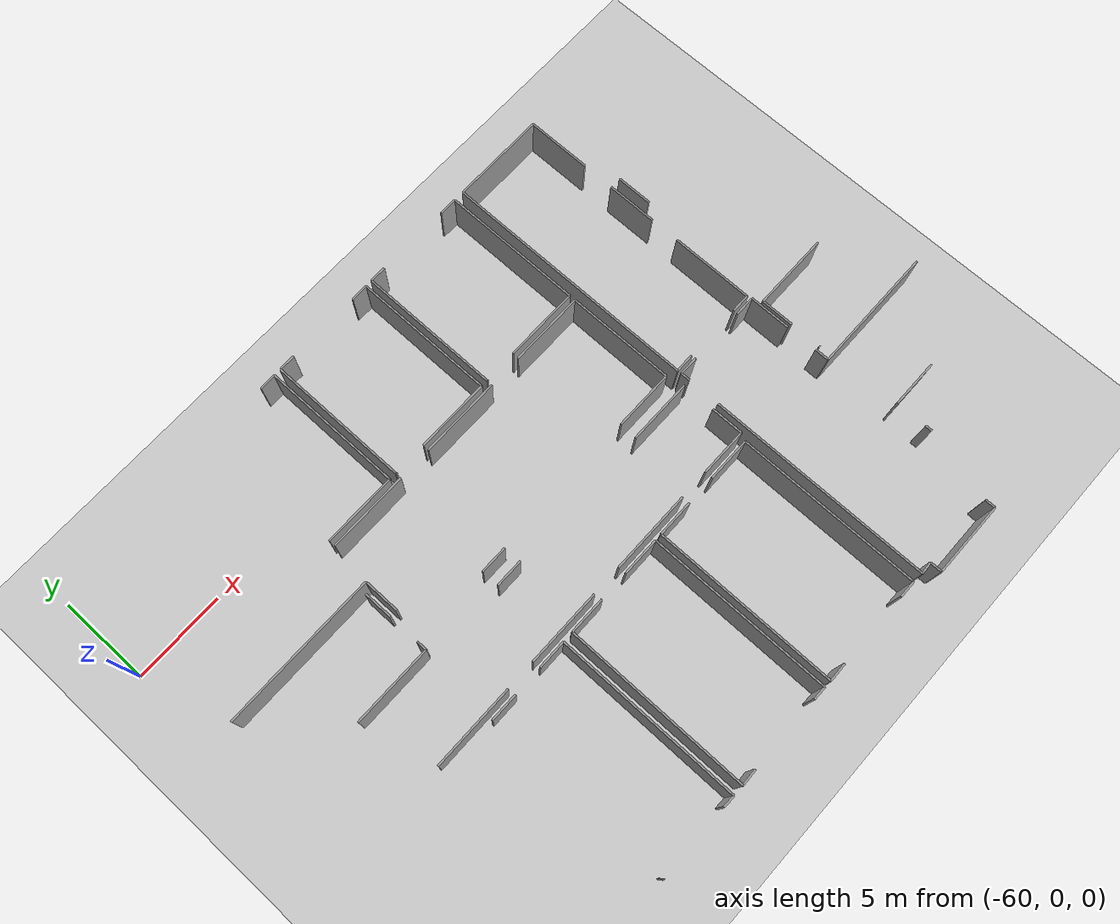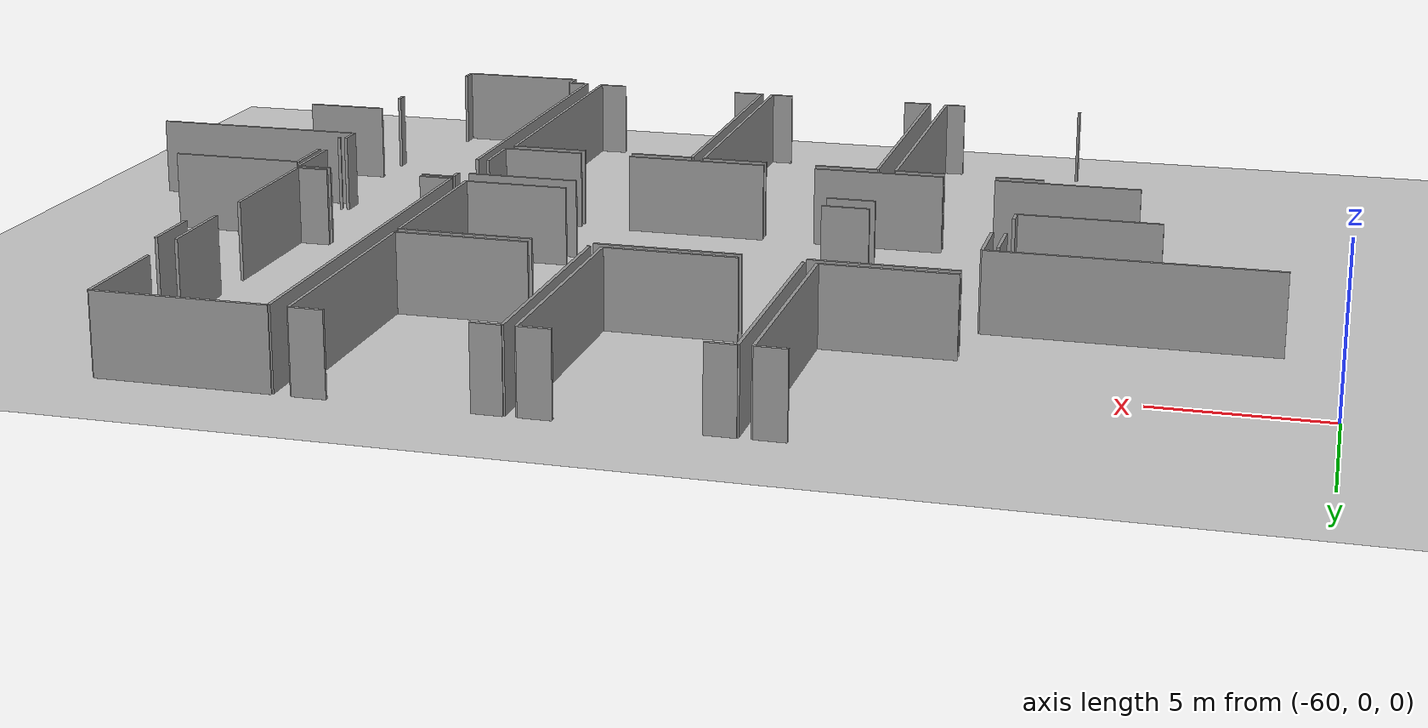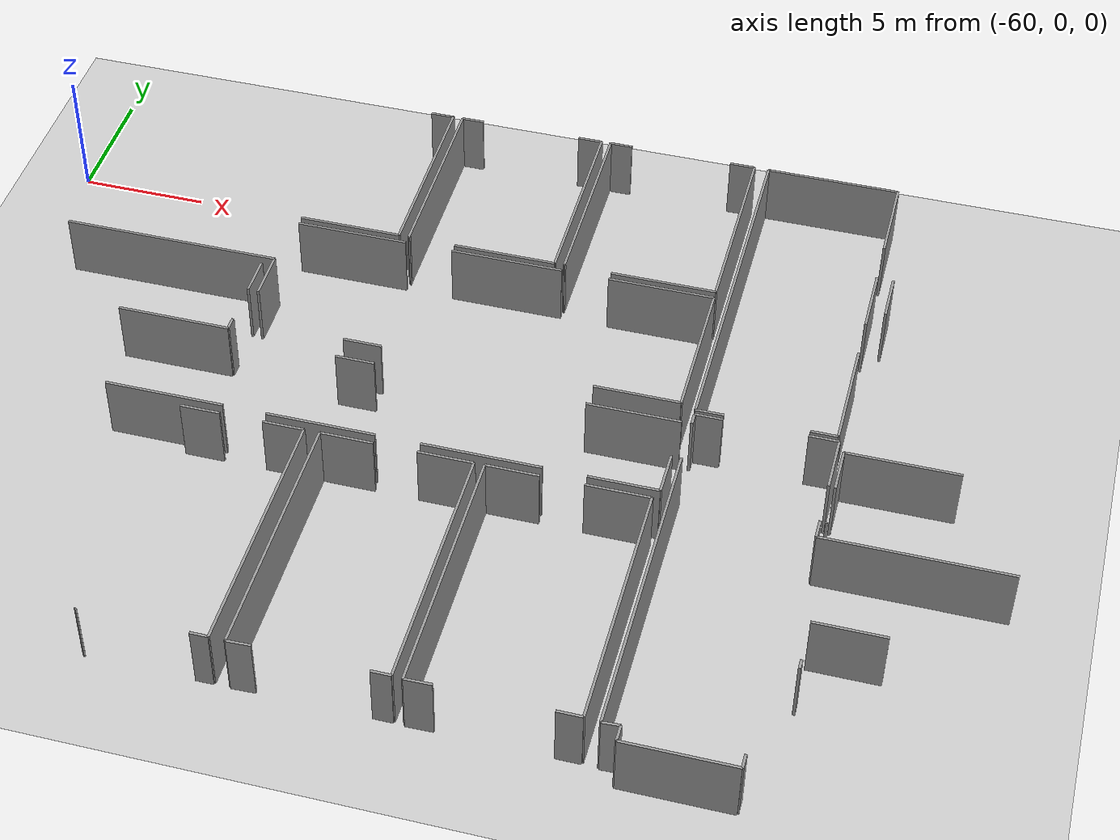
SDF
<sdf version="1.6">
 <world name="default">
  <model name="ground_plane">
   <static>1</static>
   <link name="link">
    <collision name="collision">
     <geometry><plane><normal>0 0 1</normal><size>100 100</size></plane></geometry>
     <surface><friction><ode><mu>100</mu><mu2>50</mu2></ode></friction></surface>
    </collision>
    <visual name="visual">
     <cast_shadows>0</cast_shadows>
     <geometry><plane><normal>0 0 1</normal><size>100 100</size></plane></geometry>
     <material>
      <script><uri>file://media/materials/scripts/gazebo.material</uri><name>Gazebo/Grey</name></script>
     </material>
    </visual>
   </link>
  </model>
  <model name="0510035343_A_40_1_102">
   <static>1</static>
   <link name="Wall_28">
    <collision name="Wall_28_Collision">
     <geometry><box><size>1.5147418198 0.1 2.5</size></box></geometry>
     <pose>0.757370909899 0 1.25 0 0 0</pose>
    </collision>
    <visual name="Wall_28_Visual">
     <pose>0.757370909899 0 1.25 0 0 0</pose>
     <geometry><box><size>1.5147418198 0.1 2.5</size></box></geometry>
     <material>
      <script><uri>file://media/materials/scripts/gazebo.material</uri><name>Gazebo/Grey</name></script>
      <ambient>1 1 1 1</ambient>
     </material>
    </visual>
    <pose>70.9034244184 -34.066203307 0 0 0 0.0</pose>
   </link>
   <link name="Wall_29">
    <collision name="Wall_29_Collision">
     <geometry><box><size>3.57256656828 0.1 2.5</size></box></geometry>
     <pose>1.78628328414 0 1.25 0 0 0</pose>
    </collision>
    <visual name="Wall_29_Visual">
     <pose>1.78628328414 0 1.25 0 0 0</pose>
     <geometry><box><size>3.57256656828 0.1 2.5</size></box></geometry>
     <material>
      <script><uri>file://media/materials/scripts/gazebo.material</uri><name>Gazebo/Grey</name></script>
      <ambient>1 1 1 1</ambient>
     </material>
    </visual>
    <pose>80.4839252277 -34.066203307 0 0 0 0.0</pose>
   </link>
   <link name="Wall_30">
    <collision name="Wall_30_Collision">
     <geometry><box><size>1.75467326796 0.1 2.5</size></box></geometry>
     <pose>0.877336633978 0 1.25 0 0 0</pose>
    </collision>
    <visual name="Wall_30_Visual">
     <pose>0.877336633978 0 1.25 0 0 0</pose>
     <geometry><box><size>1.75467326796 0.1 2.5</size></box></geometry>
     <material>
      <script><uri>file://media/materials/scripts/gazebo.material</uri><name>Gazebo/Grey</name></script>
      <ambient>1 1 1 1</ambient>
     </material>
    </visual>
    <pose>84.056491796 -35.8391570662 0 0 0 -1.57079632679</pose>
   </link>
   <link name="Wall_31">
    <collision name="Wall_31_Collision">
     <geometry><box><size>2.65016344536 0.1 2.5</size></box></geometry>
     <pose>1.32508172268 0 1.25 0 0 0</pose>
    </collision>
    <visual name="Wall_31_Visual">
     <pose>1.32508172268 0 1.25 0 0 0</pose>
     <geometry><box><size>2.65016344536 0.1 2.5</size></box></geometry>
     <material>
      <script><uri>file://media/materials/scripts/gazebo.material</uri><name>Gazebo/Grey</name></script>
      <ambient>1 1 1 1</ambient>
     </material>
    </visual>
    <pose>84.056491796 -37.5938303342 0 0 0 3.14159265359</pose>
   </link>
   <link name="Wall_32">
    <collision name="Wall_32_Collision">
     <geometry><box><size>4.52416769812 0.1 2.5</size></box></geometry>
     <pose>2.26208384906 0 1.25 0 0 0</pose>
    </collision>
    <visual name="Wall_32_Visual">
     <pose>2.26208384906 0 1.25 0 0 0</pose>
     <geometry><box><size>4.52416769812 0.1 2.5</size></box></geometry>
     <material>
      <script><uri>file://media/materials/scripts/gazebo.material</uri><name>Gazebo/Grey</name></script>
      <ambient>1 1 1 1</ambient>
     </material>
    </visual>
    <pose>79.7661620489 -37.5938303342 0 0 0 3.14159265359</pose>
   </link>
   <link name="Wall_33">
    <collision name="Wall_33_Collision">
     <geometry><box><size>4.1636357866 0.1 2.5</size></box></geometry>
     <pose>2.0818178933 0 1.25 0 0 0</pose>
    </collision>
    <visual name="Wall_33_Visual">
     <pose>2.0818178933 0 1.25 0 0 0</pose>
     <geometry><box><size>4.1636357866 0.1 2.5</size></box></geometry>
     <material>
      <script><uri>file://media/materials/scripts/gazebo.material</uri><name>Gazebo/Grey</name></script>
      <ambient>1 1 1 1</ambient>
     </material>
    </visual>
    <pose>73.5530800724 -37.5938303342 0 0 0 3.14159265359</pose>
   </link>
   <link name="Wall_34">
    <collision name="Wall_34_Collision">
     <geometry><box><size>4.56656828208 0.1 2.5</size></box></geometry>
     <pose>2.28328414104 0 1.25 0 0 0</pose>
    </collision>
    <visual name="Wall_34_Visual">
     <pose>2.28328414104 0 1.25 0 0 0</pose>
     <geometry><box><size>4.56656828208 0.1 2.5</size></box></geometry>
     <material>
      <script><uri>file://media/materials/scripts/gazebo.material</uri><name>Gazebo/Grey</name></script>
      <ambient>1 1 1 1</ambient>
     </material>
    </visual>
    <pose>67.7439461741 -37.5938303342 0 0 0 3.14159265359</pose>
   </link>
   <link name="Wall_131">
    <collision name="Wall_131_Collision">
     <geometry><box><size>1.52895997969 0.1 2.5</size></box></geometry>
     <pose>0.764479989844 0 1.25 0 0 0</pose>
    </collision>
    <visual name="Wall_131_Visual">
     <pose>0.764479989844 0 1.25 0 0 0</pose>
     <geometry><box><size>1.52895997969 0.1 2.5</size></box></geometry>
     <material>
      <script><uri>file://media/materials/scripts/gazebo.material</uri><name>Gazebo/Grey</name></script>
      <ambient>1 1 1 1</ambient>
     </material>
    </visual>
    <pose>66.246215367 -38.0102193024 0 0 0 0.0</pose>
   </link>
   <link name="Wall_132">
    <collision name="Wall_132_Collision">
     <geometry><box><size>1.58050080929 0.1 2.5</size></box></geometry>
     <pose>0.790250404646 0 1.25 0 0 0</pose>
    </collision>
    <visual name="Wall_132_Visual">
     <pose>0.790250404646 0 1.25 0 0 0</pose>
     <geometry><box><size>1.58050080929 0.1 2.5</size></box></geometry>
     <material>
      <script><uri>file://media/materials/scripts/gazebo.material</uri><name>Gazebo/Grey</name></script>
      <ambient>1 1 1 1</ambient>
     </material>
    </visual>
    <pose>69.4107715256 -38.0102193024 0 0 0 0.0</pose>
   </link>
   <link name="Wall_133">
    <collision name="Wall_133_Collision">
     <geometry><box><size>9.99155796756 0.1 2.5</size></box></geometry>
     <pose>4.99577898378 0 1.25 0 0 0</pose>
    </collision>
    <visual name="Wall_133_Visual">
     <pose>4.99577898378 0 1.25 0 0 0</pose>
     <geometry><box><size>9.99155796756 0.1 2.5</size></box></geometry>
     <material>
      <script><uri>file://media/materials/scripts/gazebo.material</uri><name>Gazebo/Grey</name></script>
      <ambient>1 1 1 1</ambient>
     </material>
    </visual>
    <pose>70.9912723349 -38.0102193024 0 0 0 -1.57079632679</pose>
   </link>
   <link name="Wall_134">
    <collision name="Wall_134_Collision">
     <geometry><box><size>0.66952299343 0.1 2.5</size></box></geometry>
     <pose>0.334761496715 0 1.25 0 0 0</pose>
    </collision>
    <visual name="Wall_134_Visual">
     <pose>0.334761496715 0 1.25 0 0 0</pose>
     <geometry><box><size>0.66952299343 0.1 2.5</size></box></geometry>
     <material>
      <script><uri>file://media/materials/scripts/gazebo.material</uri><name>Gazebo/Grey</name></script>
      <ambient>1 1 1 1</ambient>
     </material>
    </visual>
    <pose>70.9912723349 -48.00177727 0 0 0 3.14159265359</pose>
   </link>
   <link name="Wall_135">
    <collision name="Wall_135_Collision">
     <geometry><box><size>0.05682558138 0.1 2.5</size></box></geometry>
     <pose>0.02841279069 0 1.25 0 0 0</pose>
    </collision>
    <visual name="Wall_135_Visual">
     <pose>0.02841279069 0 1.25 0 0 0</pose>
     <geometry><box><size>0.05682558138 0.1 2.5</size></box></geometry>
     <material>
      <script><uri>file://media/materials/scripts/gazebo.material</uri><name>Gazebo/Grey</name></script>
      <ambient>1 1 1 1</ambient>
     </material>
    </visual>
    <pose>66.2822685582 -48.00177727 0 0 0 -2.25809766916</pose>
   </link>
   <link name="Wall_136">
    <collision name="Wall_136_Collision">
     <geometry><box><size>10.008822876 0.1 2.5</size></box></geometry>
     <pose>5.004411438 0 1.25 0 0 0</pose>
    </collision>
    <visual name="Wall_136_Visual">
     <pose>5.004411438 0 1.25 0 0 0</pose>
     <geometry><box><size>10.008822876 0.1 2.5</size></box></geometry>
     <material>
      <script><uri>file://media/materials/scripts/gazebo.material</uri><name>Gazebo/Grey</name></script>
      <ambient>1 1 1 1</ambient>
     </material>
    </visual>
    <pose>71.5876733632 -48.016757117 0 0 0 1.57079632679</pose>
   </link>
   <link name="Wall_137">
    <collision name="Wall_137_Collision">
     <geometry><box><size>2.02329493161 0.1 2.5</size></box></geometry>
     <pose>1.0116474658 0 1.25 0 0 0</pose>
    </collision>
    <visual name="Wall_137_Visual">
     <pose>1.0116474658 0 1.25 0 0 0</pose>
     <geometry><box><size>2.02329493161 0.1 2.5</size></box></geometry>
     <material>
      <script><uri>file://media/materials/scripts/gazebo.material</uri><name>Gazebo/Grey</name></script>
      <ambient>1 1 1 1</ambient>
     </material>
    </visual>
    <pose>71.5876733632 -38.007934241 0 0 0 0.0</pose>
   </link>
   <link name="Wall_138">
    <collision name="Wall_138_Collision">
     <geometry><box><size>2.10504935098 0.1 2.5</size></box></geometry>
     <pose>1.05252467549 0 1.25 0 0 0</pose>
    </collision>
    <visual name="Wall_138_Visual">
     <pose>1.05252467549 0 1.25 0 0 0</pose>
     <geometry><box><size>2.10504935098 0.1 2.5</size></box></geometry>
     <material>
      <script><uri>file://media/materials/scripts/gazebo.material</uri><name>Gazebo/Grey</name></script>
      <ambient>1 1 1 1</ambient>
     </material>
    </visual>
    <pose>75.2513884922 -38.007934241 0 0 0 0.0</pose>
   </link>
   <link name="Wall_139">
    <collision name="Wall_139_Collision">
     <geometry><box><size>9.97708591196 0.1 2.5</size></box></geometry>
     <pose>4.98854295598 0 1.25 0 0 0</pose>
    </collision>
    <visual name="Wall_139_Visual">
     <pose>4.98854295598 0 1.25 0 0 0</pose>
     <geometry><box><size>9.97708591196 0.1 2.5</size></box></geometry>
     <material>
      <script><uri>file://media/materials/scripts/gazebo.material</uri><name>Gazebo/Grey</name></script>
      <ambient>1 1 1 1</ambient>
     </material>
    </visual>
    <pose>77.3564378432 -38.007934241 0 0 0 -1.57079632679</pose>
   </link>
   <link name="Wall_140">
    <collision name="Wall_140_Collision">
     <geometry><box><size>0.741629375734 0.1 2.5</size></box></geometry>
     <pose>0.370814687867 0 1.25 0 0 0</pose>
    </collision>
    <visual name="Wall_140_Visual">
     <pose>0.370814687867 0 1.25 0 0 0</pose>
     <geometry><box><size>0.741629375734 0.1 2.5</size></box></geometry>
     <material>
      <script><uri>file://media/materials/scripts/gazebo.material</uri><name>Gazebo/Grey</name></script>
      <ambient>1 1 1 1</ambient>
     </material>
    </visual>
    <pose>77.3564378432 -47.985020153 0 0 0 3.14159265359</pose>
   </link>
   <link name="Wall_141">
    <collision name="Wall_141_Collision">
     <geometry><box><size>0.903157048505 0.1 2.5</size></box></geometry>
     <pose>0.451578524253 0 1.25 0 0 0</pose>
    </collision>
    <visual name="Wall_141_Visual">
     <pose>0.451578524253 0 1.25 0 0 0</pose>
     <geometry><box><size>0.903157048505 0.1 2.5</size></box></geometry>
     <material>
      <script><uri>file://media/materials/scripts/gazebo.material</uri><name>Gazebo/Grey</name></script>
      <ambient>1 1 1 1</ambient>
     </material>
    </visual>
    <pose>72.4902726205 -47.985020153 0 0 0 -3.10644538955</pose>
   </link>
   <link name="Wall_142">
    <collision name="Wall_142_Collision">
     <geometry><box><size>10.0126313117 0.1 2.5</size></box></geometry>
     <pose>5.00631565584 0 1.25 0 0 0</pose>
    </collision>
    <visual name="Wall_142_Visual">
     <pose>5.00631565584 0 1.25 0 0 0</pose>
     <geometry><box><size>10.0126313117 0.1 2.5</size></box></geometry>
     <material>
      <script><uri>file://media/materials/scripts/gazebo.material</uri><name>Gazebo/Grey</name></script>
      <ambient>1 1 1 1</ambient>
     </material>
    </visual>
    <pose>77.7494684059 -48.0180265956 0 0 0 1.57079632679</pose>
   </link>
   <link name="Wall_143">
    <collision name="Wall_143_Collision">
     <geometry><box><size>2.02354882732 0.1 2.5</size></box></geometry>
     <pose>1.01177441366 0 1.25 0 0 0</pose>
    </collision>
    <visual name="Wall_143_Visual">
     <pose>1.01177441366 0 1.25 0 0 0</pose>
     <geometry><box><size>2.02354882732 0.1 2.5</size></box></geometry>
     <material>
      <script><uri>file://media/materials/scripts/gazebo.material</uri><name>Gazebo/Grey</name></script>
      <ambient>1 1 1 1</ambient>
     </material>
    </visual>
    <pose>77.7494684059 -38.0053952839 0 0 0 0.0</pose>
   </link>
   <link name="Wall_144">
    <collision name="Wall_144_Collision">
     <geometry><box><size>2.4389222127 0.1 2.5</size></box></geometry>
     <pose>1.21946110635 0 1.25 0 0 0</pose>
    </collision>
    <visual name="Wall_144_Visual">
     <pose>1.21946110635 0 1.25 0 0 0</pose>
     <geometry><box><size>2.4389222127 0.1 2.5</size></box></geometry>
     <material>
      <script><uri>file://media/materials/scripts/gazebo.material</uri><name>Gazebo/Grey</name></script>
      <ambient>1 1 1 1</ambient>
     </material>
    </visual>
    <pose>81.4063283506 -38.0053952839 0 0 0 0.0</pose>
   </link>
   <link name="Wall_145">
    <collision name="Wall_145_Collision">
     <geometry><box><size>9.98978069758 0.1 2.5</size></box></geometry>
     <pose>4.99489034879 0 1.25 0 0 0</pose>
    </collision>
    <visual name="Wall_145_Visual">
     <pose>4.99489034879 0 1.25 0 0 0</pose>
     <geometry><box><size>9.98978069758 0.1 2.5</size></box></geometry>
     <material>
      <script><uri>file://media/materials/scripts/gazebo.material</uri><name>Gazebo/Grey</name></script>
      <ambient>1 1 1 1</ambient>
     </material>
    </visual>
    <pose>83.8452505633 -38.0053952839 0 0 0 -1.57079632679</pose>
   </link>
   <link name="Wall_146">
    <collision name="Wall_146_Collision">
     <geometry><box><size>0.936621282808 0.1 2.5</size></box></geometry>
     <pose>0.468310641404 0 1.25 0 0 0</pose>
    </collision>
    <visual name="Wall_146_Visual">
     <pose>0.468310641404 0 1.25 0 0 0</pose>
     <geometry><box><size>0.936621282808 0.1 2.5</size></box></geometry>
     <material>
      <script><uri>file://media/materials/scripts/gazebo.material</uri><name>Gazebo/Grey</name></script>
      <ambient>1 1 1 1</ambient>
     </material>
    </visual>
    <pose>83.8452505633 -47.9951759815 0 0 0 3.14159265359</pose>
   </link>
   <link name="Wall_147">
    <collision name="Wall_147_Collision">
     <geometry><box><size>1.01787053901 0.1 2.5</size></box></geometry>
     <pose>0.508935269503 0 1.25 0 0 0</pose>
    </collision>
    <visual name="Wall_147_Visual">
     <pose>0.508935269503 0 1.25 0 0 0</pose>
     <geometry><box><size>1.01787053901 0.1 2.5</size></box></geometry>
     <material>
      <script><uri>file://media/materials/scripts/gazebo.material</uri><name>Gazebo/Grey</name></script>
      <ambient>1 1 1 1</ambient>
     </material>
    </visual>
    <pose>78.7670824209 -47.9951759815 0 0 0 -3.11914133681</pose>
   </link>
   <link name="Wall_199">
    <collision name="Wall_199_Collision">
     <geometry><box><size>12.210098702 0.1 2.5</size></box></geometry>
     <pose>6.10504935098 0 1.25 0 0 0</pose>
    </collision>
    <visual name="Wall_199_Visual">
     <pose>6.10504935098 0 1.25 0 0 0</pose>
     <geometry><box><size>12.210098702 0.1 2.5</size></box></geometry>
     <material>
      <script><uri>file://media/materials/scripts/gazebo.material</uri><name>Gazebo/Grey</name></script>
      <ambient>1 1 1 1</ambient>
     </material>
    </visual>
    <pose>84.4269256403 -48.0568726396 0 0 0 1.57079632679</pose>
   </link>
   <link name="Wall_200">
    <collision name="Wall_200_Collision">
     <geometry><box><size>0.494334951918 0.1 2.5</size></box></geometry>
     <pose>0.247167475959 0 1.25 0 0 0</pose>
    </collision>
    <visual name="Wall_200_Visual">
     <pose>0.247167475959 0 1.25 0 0 0</pose>
     <geometry><box><size>0.494334951918 0.1 2.5</size></box></geometry>
     <material>
      <script><uri>file://media/materials/scripts/gazebo.material</uri><name>Gazebo/Grey</name></script>
      <ambient>1 1 1 1</ambient>
     </material>
    </visual>
    <pose>84.4269256403 -34.0613792885 0 0 0 1.57079632679</pose>
   </link>
   <link name="Wall_201">
    <collision name="Wall_201_Collision">
     <geometry><box><size>1.04427306484 0.1 2.5</size></box></geometry>
     <pose>0.522136532419 0 1.25 0 0 0</pose>
    </collision>
    <visual name="Wall_201_Visual">
     <pose>0.522136532419 0 1.25 0 0 0</pose>
     <geometry><box><size>1.04427306484 0.1 2.5</size></box></geometry>
     <material>
      <script><uri>file://media/materials/scripts/gazebo.material</uri><name>Gazebo/Grey</name></script>
      <ambient>1 1 1 1</ambient>
     </material>
    </visual>
    <pose>84.4269256403 -33.5670443365 0 0 0 0.0</pose>
   </link>
   <link name="Wall_202">
    <collision name="Wall_202_Collision">
     <geometry><box><size>1.11358659431 0.1 2.5</size></box></geometry>
     <pose>0.556793297153 0 1.25 0 0 0</pose>
    </collision>
    <visual name="Wall_202_Visual">
     <pose>0.556793297153 0 1.25 0 0 0</pose>
     <geometry><box><size>1.11358659431 0.1 2.5</size></box></geometry>
     <material>
      <script><uri>file://media/materials/scripts/gazebo.material</uri><name>Gazebo/Grey</name></script>
      <ambient>1 1 1 1</ambient>
     </material>
    </visual>
    <pose>88.6121425624 -33.5670443365 0 0 0 0.0</pose>
   </link>
   <link name="Wall_203">
    <collision name="Wall_203_Collision">
     <geometry><box><size>2.26043352693 0.1 2.5</size></box></geometry>
     <pose>1.13021676346 0 1.25 0 0 0</pose>
    </collision>
    <visual name="Wall_203_Visual">
     <pose>1.13021676346 0 1.25 0 0 0</pose>
     <geometry><box><size>2.26043352693 0.1 2.5</size></box></geometry>
     <material>
      <script><uri>file://media/materials/scripts/gazebo.material</uri><name>Gazebo/Grey</name></script>
      <ambient>1 1 1 1</ambient>
     </material>
    </visual>
    <pose>89.7257291567 -33.5670443365 0 0 0 -1.57079632679</pose>
   </link>
   <link name="Wall_204">
    <collision name="Wall_204_Collision">
     <geometry><box><size>0.768034529817 0.1 2.5</size></box></geometry>
     <pose>0.384017264908 0 1.25 0 0 0</pose>
    </collision>
    <visual name="Wall_204_Visual">
     <pose>0.384017264908 0 1.25 0 0 0</pose>
     <geometry><box><size>0.768034529817 0.1 2.5</size></box></geometry>
     <material>
      <script><uri>file://media/materials/scripts/gazebo.material</uri><name>Gazebo/Grey</name></script>
      <ambient>1 1 1 1</ambient>
     </material>
    </visual>
    <pose>89.7257291567 -37.5460979403 0 0 0 -1.57079632679</pose>
   </link>
   <link name="Wall_205">
    <collision name="Wall_205_Collision">
     <geometry><box><size>6.99736583198 0.1 2.5</size></box></geometry>
     <pose>3.49868291599 0 1.25 0 0 0</pose>
    </collision>
    <visual name="Wall_205_Visual">
     <pose>3.49868291599 0 1.25 0 0 0</pose>
     <geometry><box><size>6.99736583198 0.1 2.5</size></box></geometry>
     <material>
      <script><uri>file://media/materials/scripts/gazebo.material</uri><name>Gazebo/Grey</name></script>
      <ambient>1 1 1 1</ambient>
     </material>
    </visual>
    <pose>89.7257291567 -38.3141324701 0 0 0 0.0</pose>
   </link>
   <link name="Wall_209">
    <collision name="Wall_209_Collision">
     <geometry><box><size>0.556793297153 0.1 2.5</size></box></geometry>
     <pose>0.278396648577 0 1.25 0 0 0</pose>
    </collision>
    <visual name="Wall_209_Visual">
     <pose>0.278396648577 0 1.25 0 0 0</pose>
     <geometry><box><size>0.556793297153 0.1 2.5</size></box></geometry>
     <material>
      <script><uri>file://media/materials/scripts/gazebo.material</uri><name>Gazebo/Grey</name></script>
      <ambient>1 1 1 1</ambient>
     </material>
    </visual>
    <pose>89.1882319337 -48.0952108921 0 0 0 -1.57079632679</pose>
   </link>
   <link name="Wall_210">
    <collision name="Wall_210_Collision">
     <geometry><box><size>4.10854041702 0.1 2.5</size></box></geometry>
     <pose>2.05427020851 0 1.25 0 0 0</pose>
    </collision>
    <visual name="Wall_210_Visual">
     <pose>2.05427020851 0 1.25 0 0 0</pose>
     <geometry><box><size>4.10854041702 0.1 2.5</size></box></geometry>
     <material>
      <script><uri>file://media/materials/scripts/gazebo.material</uri><name>Gazebo/Grey</name></script>
      <ambient>1 1 1 1</ambient>
     </material>
    </visual>
    <pose>89.1882319337 -48.6520041893 0 0 0 3.14159265359</pose>
   </link>
   <link name="Wall_211">
    <collision name="Wall_211_Collision">
     <geometry><box><size>0.633723697991 0.1 2.5</size></box></geometry>
     <pose>0.316861848996 0 1.25 0 0 0</pose>
    </collision>
    <visual name="Wall_211_Visual">
     <pose>0.316861848996 0 1.25 0 0 0</pose>
     <geometry><box><size>0.633723697991 0.1 2.5</size></box></geometry>
     <material>
      <script><uri>file://media/materials/scripts/gazebo.material</uri><name>Gazebo/Grey</name></script>
      <ambient>1 1 1 1</ambient>
     </material>
    </visual>
    <pose>85.0796915167 -48.6520041893 0 0 0 1.57079632679</pose>
   </link>
   <link name="Wall_212">
    <collision name="Wall_212_Collision">
     <geometry><box><size>0.653905683812 0.1 2.5</size></box></geometry>
     <pose>0.326952841906 0 1.25 0 0 0</pose>
    </collision>
    <visual name="Wall_212_Visual">
     <pose>0.326952841906 0 1.25 0 0 0</pose>
     <geometry><box><size>0.653905683812 0.1 2.5</size></box></geometry>
     <material>
      <script><uri>file://media/materials/scripts/gazebo.material</uri><name>Gazebo/Grey</name></script>
      <ambient>1 1 1 1</ambient>
     </material>
    </visual>
    <pose>85.0796915167 -48.0182804913 0 0 0 -3.0825404265</pose>
   </link>
   <link name="Wall_213">
    <collision name="Wall_213_Collision">
     <geometry><box><size>14.1252340601 0.1 2.5</size></box></geometry>
     <pose>7.06261703005 0 1.25 0 0 0</pose>
    </collision>
    <visual name="Wall_213_Visual">
     <pose>7.06261703005 0 1.25 0 0 0</pose>
     <geometry><box><size>14.1252340601 0.1 2.5</size></box></geometry>
     <material>
      <script><uri>file://media/materials/scripts/gazebo.material</uri><name>Gazebo/Grey</name></script>
      <ambient>1 1 1 1</ambient>
     </material>
    </visual>
    <pose>84.4106763147 -33.339807674 0 0 0 1.57079632679</pose>
   </link>
   <link name="Wall_214">
    <collision name="Wall_214_Collision">
     <geometry><box><size>5.23863023263 0.1 2.5</size></box></geometry>
     <pose>2.61931511632 0 1.25 0 0 0</pose>
    </collision>
    <visual name="Wall_214_Visual">
     <pose>2.61931511632 0 1.25 0 0 0</pose>
     <geometry><box><size>5.23863023263 0.1 2.5</size></box></geometry>
     <material>
      <script><uri>file://media/materials/scripts/gazebo.material</uri><name>Gazebo/Grey</name></script>
      <ambient>1 1 1 1</ambient>
     </material>
    </visual>
    <pose>84.4106763147 -19.2145736139 0 0 0 0.0</pose>
   </link>
   <link name="Wall_215">
    <collision name="Wall_215_Collision">
     <geometry><box><size>3.51975626012 0.1 2.5</size></box></geometry>
     <pose>1.75987813006 0 1.25 0 0 0</pose>
    </collision>
    <visual name="Wall_215_Visual">
     <pose>1.75987813006 0 1.25 0 0 0</pose>
     <geometry><box><size>3.51975626012 0.1 2.5</size></box></geometry>
     <material>
      <script><uri>file://media/materials/scripts/gazebo.material</uri><name>Gazebo/Grey</name></script>
      <ambient>1 1 1 1</ambient>
     </material>
    </visual>
    <pose>89.6493065473 -19.2145736139 0 0 0 -1.57079632679</pose>
   </link>
   <link name="Wall_216">
    <collision name="Wall_216_Collision">
     <geometry><box><size>2.72150814053 0.1 2.5</size></box></geometry>
     <pose>1.36075407027 0 1.25 0 0 0</pose>
    </collision>
    <visual name="Wall_216_Visual">
     <pose>1.36075407027 0 1.25 0 0 0</pose>
     <geometry><box><size>2.72150814053 0.1 2.5</size></box></geometry>
     <material>
      <script><uri>file://media/materials/scripts/gazebo.material</uri><name>Gazebo/Grey</name></script>
      <ambient>1 1 1 1</ambient>
     </material>
    </visual>
    <pose>89.6493065473 -24.4910343077 0 0 0 -1.57079632679</pose>
   </link>
   <link name="Wall_217">
    <collision name="Wall_217_Collision">
     <geometry><box><size>4.51375797391 0.1 2.5</size></box></geometry>
     <pose>2.25687898696 0 1.25 0 0 0</pose>
    </collision>
    <visual name="Wall_217_Visual">
     <pose>2.25687898696 0 1.25 0 0 0</pose>
     <geometry><box><size>4.51375797391 0.1 2.5</size></box></geometry>
     <material>
      <script><uri>file://media/materials/scripts/gazebo.material</uri><name>Gazebo/Grey</name></script>
      <ambient>1 1 1 1</ambient>
     </material>
    </visual>
    <pose>89.6493065473 -28.814624393 0 0 0 -1.57079632679</pose>
   </link>
   <link name="Wall_218">
    <collision name="Wall_218_Collision">
     <geometry><box><size>1.01862959789 0.1 2.5</size></box></geometry>
     <pose>0.509314798946 0 1.25 0 0 0</pose>
    </collision>
    <visual name="Wall_218_Visual">
     <pose>0.509314798946 0 1.25 0 0 0</pose>
     <geometry><box><size>1.01862959789 0.1 2.5</size></box></geometry>
     <material>
      <script><uri>file://media/materials/scripts/gazebo.material</uri><name>Gazebo/Grey</name></script>
      <ambient>1 1 1 1</ambient>
     </material>
    </visual>
    <pose>89.6493065473 -33.3283823669 0 0 0 3.14159265359</pose>
   </link>
   <link name="Wall_219">
    <collision name="Wall_219_Collision">
     <geometry><box><size>1.04585884789 0.1 2.5</size></box></geometry>
     <pose>0.522929423943 0 1.25 0 0 0</pose>
    </collision>
    <visual name="Wall_219_Visual">
     <pose>0.522929423943 0 1.25 0 0 0</pose>
     <geometry><box><size>1.04585884789 0.1 2.5</size></box></geometry>
     <material>
      <script><uri>file://media/materials/scripts/gazebo.material</uri><name>Gazebo/Grey</name></script>
      <ambient>1 1 1 1</ambient>
     </material>
    </visual>
    <pose>85.4564727538 -33.3283823669 0 0 0 -3.13066810642</pose>
   </link>
   <link name="Wall_220">
    <collision name="Wall_220_Collision">
     <geometry><box><size>0.0548414738646 0.1 2.5</size></box></geometry>
     <pose>0.0274207369323 0 1.25 0 0 0</pose>
    </collision>
    <visual name="Wall_220_Visual">
     <pose>0.0274207369323 0 1.25 0 0 0</pose>
     <geometry><box><size>0.0548414738646 0.1 2.5</size></box></geometry>
     <material>
      <script><uri>file://media/materials/scripts/gazebo.material</uri><name>Gazebo/Grey</name></script>
      <ambient>1 1 1 1</ambient>
     </material>
    </visual>
    <pose>89.9697229363 -37.6070329112 0 0 0 1.57079632679</pose>
   </link>
   <link name="Wall_221">
    <collision name="Wall_221_Collision">
     <geometry><box><size>1.8029134533 0.1 2.5</size></box></geometry>
     <pose>0.90145672665 0 1.25 0 0 0</pose>
    </collision>
    <visual name="Wall_221_Visual">
     <pose>0.90145672665 0 1.25 0 0 0</pose>
     <geometry><box><size>1.8029134533 0.1 2.5</size></box></geometry>
     <material>
      <script><uri>file://media/materials/scripts/gazebo.material</uri><name>Gazebo/Grey</name></script>
      <ambient>1 1 1 1</ambient>
     </material>
    </visual>
    <pose>89.9697229363 -35.8767336317 0 0 0 1.57079632679</pose>
   </link>
   <link name="Wall_222">
    <collision name="Wall_222_Collision">
     <geometry><box><size>4.27001809007 0.1 2.5</size></box></geometry>
     <pose>2.13500904503 0 1.25 0 0 0</pose>
    </collision>
    <visual name="Wall_222_Visual">
     <pose>2.13500904503 0 1.25 0 0 0</pose>
     <geometry><box><size>4.27001809007 0.1 2.5</size></box></geometry>
     <material>
      <script><uri>file://media/materials/scripts/gazebo.material</uri><name>Gazebo/Grey</name></script>
      <ambient>1 1 1 1</ambient>
     </material>
    </visual>
    <pose>89.9697229363 -34.0738201784 0 0 0 0.0</pose>
   </link>
   <link name="Wall_225">
    <collision name="Wall_225_Collision">
     <geometry><box><size>1.94382557365 0.1 2.5</size></box></geometry>
     <pose>0.971912786823 0 1.25 0 0 0</pose>
    </collision>
    <visual name="Wall_225_Visual">
     <pose>0.971912786823 0 1.25 0 0 0</pose>
     <geometry><box><size>1.94382557365 0.1 2.5</size></box></geometry>
     <material>
      <script><uri>file://media/materials/scripts/gazebo.material</uri><name>Gazebo/Grey</name></script>
      <ambient>1 1 1 1</ambient>
     </material>
    </visual>
    <pose>90.2804912882 -26.4475546669 0 0 0 1.57079632679</pose>
   </link>
   <link name="Wall_441">
    <collision name="Wall_441_Collision">
     <geometry><box><size>7.70700434796 0.1 2.5</size></box></geometry>
     <pose>3.85350217398 0 1.25 0 0 0</pose>
    </collision>
    <visual name="Wall_441_Visual">
     <pose>3.85350217398 0 1.25 0 0 0</pose>
     <geometry><box><size>7.70700434796 0.1 2.5</size></box></geometry>
     <material>
      <script><uri>file://media/materials/scripts/gazebo.material</uri><name>Gazebo/Grey</name></script>
      <ambient>1 1 1 1</ambient>
     </material>
    </visual>
    <pose>71.5960519217 -26.9185312133 0 0 0 1.57079632679</pose>
   </link>
   <link name="Wall_442">
    <collision name="Wall_442_Collision">
     <geometry><box><size>0.896251864547 0.1 2.5</size></box></geometry>
     <pose>0.448125932273 0 1.25 0 0 0</pose>
    </collision>
    <visual name="Wall_442_Visual">
     <pose>0.448125932273 0 1.25 0 0 0</pose>
     <geometry><box><size>0.896251864547 0.1 2.5</size></box></geometry>
     <material>
      <script><uri>file://media/materials/scripts/gazebo.material</uri><name>Gazebo/Grey</name></script>
      <ambient>1 1 1 1</ambient>
     </material>
    </visual>
    <pose>71.5960519217 -19.2115268653 0 0 0 0.0</pose>
   </link>
   <link name="Wall_443">
    <collision name="Wall_443_Collision">
     <geometry><box><size>0.960233584055 0.1 2.5</size></box></geometry>
     <pose>0.480116792028 0 1.25 0 0 0</pose>
    </collision>
    <visual name="Wall_443_Visual">
     <pose>0.480116792028 0 1.25 0 0 0</pose>
     <geometry><box><size>0.960233584055 0.1 2.5</size></box></geometry>
     <material>
      <script><uri>file://media/materials/scripts/gazebo.material</uri><name>Gazebo/Grey</name></script>
      <ambient>1 1 1 1</ambient>
     </material>
    </visual>
    <pose>76.5279761338 -19.2115268653 0 0 0 0.0</pose>
   </link>
   <link name="Wall_444">
    <collision name="Wall_444_Collision">
     <geometry><box><size>7.71512901076 0.1 2.5</size></box></geometry>
     <pose>3.85756450538 0 1.25 0 0 0</pose>
    </collision>
    <visual name="Wall_444_Visual">
     <pose>3.85756450538 0 1.25 0 0 0</pose>
     <geometry><box><size>7.71512901076 0.1 2.5</size></box></geometry>
     <material>
      <script><uri>file://media/materials/scripts/gazebo.material</uri><name>Gazebo/Grey</name></script>
      <ambient>1 1 1 1</ambient>
     </material>
    </visual>
    <pose>77.4882097179 -19.2115268653 0 0 0 -1.57079632679</pose>
   </link>
   <link name="Wall_445">
    <collision name="Wall_445_Collision">
     <geometry><box><size>4.02475483195 0.1 2.5</size></box></geometry>
     <pose>2.01237741598 0 1.25 0 0 0</pose>
    </collision>
    <visual name="Wall_445_Visual">
     <pose>2.01237741598 0 1.25 0 0 0</pose>
     <geometry><box><size>4.02475483195 0.1 2.5</size></box></geometry>
     <material>
      <script><uri>file://media/materials/scripts/gazebo.material</uri><name>Gazebo/Grey</name></script>
      <ambient>1 1 1 1</ambient>
     </material>
    </visual>
    <pose>77.4882097179 -26.9266558761 0 0 0 3.14159265359</pose>
   </link>
   <link name="Wall_446">
    <collision name="Wall_446_Collision">
     <geometry><box><size>0.0642436430423 0.1 2.5</size></box></geometry>
     <pose>0.0321218215212 0 1.25 0 0 0</pose>
    </collision>
    <visual name="Wall_446_Visual">
     <pose>0.0321218215212 0 1.25 0 0 0</pose>
     <geometry><box><size>0.0642436430423 0.1 2.5</size></box></geometry>
     <material>
      <script><uri>file://media/materials/scripts/gazebo.material</uri><name>Gazebo/Grey</name></script>
      <ambient>1 1 1 1</ambient>
     </material>
    </visual>
    <pose>71.6597797455 -26.9266558761 0 0 0 3.01478668356</pose>
   </link>
   <link name="Wall_449">
    <collision name="Wall_449_Collision">
     <geometry><box><size>0.916309625821 0.1 2.5</size></box></geometry>
     <pose>0.458154812911 0 1.25 0 0 0</pose>
    </collision>
    <visual name="Wall_449_Visual">
     <pose>0.458154812911 0 1.25 0 0 0</pose>
     <geometry><box><size>0.916309625821 0.1 2.5</size></box></geometry>
     <material>
      <script><uri>file://media/materials/scripts/gazebo.material</uri><name>Gazebo/Grey</name></script>
      <ambient>1 1 1 1</ambient>
     </material>
    </visual>
    <pose>70.2757942175 -19.2211749024 0 0 0 0.0</pose>
   </link>
   <link name="Wall_450">
    <collision name="Wall_450_Collision">
     <geometry><box><size>7.68897775239 0.1 2.5</size></box></geometry>
     <pose>3.84448887619 0 1.25 0 0 0</pose>
    </collision>
    <visual name="Wall_450_Visual">
     <pose>3.84448887619 0 1.25 0 0 0</pose>
     <geometry><box><size>7.68897775239 0.1 2.5</size></box></geometry>
     <material>
      <script><uri>file://media/materials/scripts/gazebo.material</uri><name>Gazebo/Grey</name></script>
      <ambient>1 1 1 1</ambient>
     </material>
    </visual>
    <pose>71.1921038433 -19.2211749024 0 0 0 -1.57079632679</pose>
   </link>
   <link name="Wall_451">
    <collision name="Wall_451_Collision">
     <geometry><box><size>4.01993081342 0.1 2.5</size></box></geometry>
     <pose>2.00996540671 0 1.25 0 0 0</pose>
    </collision>
    <visual name="Wall_451_Visual">
     <pose>2.00996540671 0 1.25 0 0 0</pose>
     <geometry><box><size>4.01993081342 0.1 2.5</size></box></geometry>
     <material>
      <script><uri>file://media/materials/scripts/gazebo.material</uri><name>Gazebo/Grey</name></script>
      <ambient>1 1 1 1</ambient>
     </material>
    </visual>
    <pose>71.1921038433 -26.9101526548 0 0 0 3.14159265359</pose>
   </link>
   <link name="Wall_453">
    <collision name="Wall_453_Collision">
     <geometry><box><size>7.74381922625 0.1 2.5</size></box></geometry>
     <pose>3.87190961313 0 1.25 0 0 0</pose>
    </collision>
    <visual name="Wall_453_Visual">
     <pose>3.87190961313 0 1.25 0 0 0</pose>
     <geometry><box><size>7.74381922625 0.1 2.5</size></box></geometry>
     <material>
      <script><uri>file://media/materials/scripts/gazebo.material</uri><name>Gazebo/Grey</name></script>
      <ambient>1 1 1 1</ambient>
     </material>
    </visual>
    <pose>77.8708305563 -26.9434129931 0 0 0 1.57079632679</pose>
   </link>
   <link name="Wall_454">
    <collision name="Wall_454_Collision">
     <geometry><box><size>0.89549017741 0.1 2.5</size></box></geometry>
     <pose>0.447745088705 0 1.25 0 0 0</pose>
    </collision>
    <visual name="Wall_454_Visual">
     <pose>0.447745088705 0 1.25 0 0 0</pose>
     <geometry><box><size>0.89549017741 0.1 2.5</size></box></geometry>
     <material>
      <script><uri>file://media/materials/scripts/gazebo.material</uri><name>Gazebo/Grey</name></script>
      <ambient>1 1 1 1</ambient>
     </material>
    </visual>
    <pose>77.8708305563 -19.1995937669 0 0 0 0.0</pose>
   </link>
   <link name="Wall_455">
    <collision name="Wall_455_Collision">
     <geometry><box><size>0.993240026659 0.1 2.5</size></box></geometry>
     <pose>0.49662001333 0 1.25 0 0 0</pose>
    </collision>
    <visual name="Wall_455_Visual">
     <pose>0.49662001333 0 1.25 0 0 0</pose>
     <geometry><box><size>0.993240026659 0.1 2.5</size></box></geometry>
     <material>
      <script><uri>file://media/materials/scripts/gazebo.material</uri><name>Gazebo/Grey</name></script>
      <ambient>1 1 1 1</ambient>
     </material>
    </visual>
    <pose>82.8375384811 -19.1995937669 0 0 0 0.0</pose>
   </link>
   <link name="Wall_456">
    <collision name="Wall_456_Collision">
     <geometry><box><size>7.71030499222 0.1 2.5</size></box></geometry>
     <pose>3.85515249611 0 1.25 0 0 0</pose>
    </collision>
    <visual name="Wall_456_Visual">
     <pose>3.85515249611 0 1.25 0 0 0</pose>
     <geometry><box><size>7.71030499222 0.1 2.5</size></box></geometry>
     <material>
      <script><uri>file://media/materials/scripts/gazebo.material</uri><name>Gazebo/Grey</name></script>
      <ambient>1 1 1 1</ambient>
     </material>
    </visual>
    <pose>83.8307785077 -19.1995937669 0 0 0 -1.57079632679</pose>
   </link>
   <link name="Wall_457">
    <collision name="Wall_457_Collision">
     <geometry><box><size>4.10828652131 0.1 2.5</size></box></geometry>
     <pose>2.05414326066 0 1.25 0 0 0</pose>
    </collision>
    <visual name="Wall_457_Visual">
     <pose>2.05414326066 0 1.25 0 0 0</pose>
     <geometry><box><size>4.10828652131 0.1 2.5</size></box></geometry>
     <material>
      <script><uri>file://media/materials/scripts/gazebo.material</uri><name>Gazebo/Grey</name></script>
      <ambient>1 1 1 1</ambient>
     </material>
    </visual>
    <pose>83.8307785077 -26.9098987591 0 0 0 3.14159265359</pose>
   </link>
   <link name="Wall_458">
    <collision name="Wall_458_Collision">
     <geometry><box><size>0.055857056714 0.1 2.5</size></box></geometry>
     <pose>0.027928528357 0 1.25 0 0 0</pose>
    </collision>
    <visual name="Wall_458_Visual">
     <pose>0.027928528357 0 1.25 0 0 0</pose>
     <geometry><box><size>0.055857056714 0.1 2.5</size></box></geometry>
     <material>
      <script><uri>file://media/materials/scripts/gazebo.material</uri><name>Gazebo/Grey</name></script>
      <ambient>1 1 1 1</ambient>
     </material>
    </visual>
    <pose>77.9155162017 -26.9098987591 0 0 0 -2.4980915448</pose>
   </link>
   <link name="Wall_466">
    <collision name="Wall_466_Collision">
     <geometry><box><size>4.39264971913 0.1 2.5</size></box></geometry>
     <pose>2.19632485956 0 1.25 0 0 0</pose>
    </collision>
    <visual name="Wall_466_Visual">
     <pose>2.19632485956 0 1.25 0 0 0</pose>
     <geometry><box><size>4.39264971913 0.1 2.5</size></box></geometry>
     <material>
      <script><uri>file://media/materials/scripts/gazebo.material</uri><name>Gazebo/Grey</name></script>
      <ambient>1 1 1 1</ambient>
     </material>
    </visual>
    <pose>67.1802976927 -27.2511345965 0 0 0 0.0</pose>
   </link>
   <link name="Wall_467">
    <collision name="Wall_467_Collision">
     <geometry><box><size>4.4127074804 0.1 2.5</size></box></geometry>
     <pose>2.2063537402 0 1.25 0 0 0</pose>
    </collision>
    <visual name="Wall_467_Visual">
     <pose>2.2063537402 0 1.25 0 0 0</pose>
     <geometry><box><size>4.4127074804 0.1 2.5</size></box></geometry>
     <material>
      <script><uri>file://media/materials/scripts/gazebo.material</uri><name>Gazebo/Grey</name></script>
      <ambient>1 1 1 1</ambient>
     </material>
    </visual>
    <pose>73.4413659589 -27.2511345965 0 0 0 0.0</pose>
   </link>
   <link name="Wall_468">
    <collision name="Wall_468_Collision">
     <geometry><box><size>4.12326636834 0.1 2.5</size></box></geometry>
     <pose>2.06163318417 0 1.25 0 0 0</pose>
    </collision>
    <visual name="Wall_468_Visual">
     <pose>2.06163318417 0 1.25 0 0 0</pose>
     <geometry><box><size>4.12326636834 0.1 2.5</size></box></geometry>
     <material>
      <script><uri>file://media/materials/scripts/gazebo.material</uri><name>Gazebo/Grey</name></script>
      <ambient>1 1 1 1</ambient>
     </material>
    </visual>
    <pose>79.7062426608 -27.2511345965 0 0 0 0.0</pose>
   </link>
   <link name="Wall_469">
    <collision name="Wall_469_Collision">
     <geometry><box><size>5.86626043353 0.1 2.5</size></box></geometry>
     <pose>2.93313021676 0 1.25 0 0 0</pose>
    </collision>
    <visual name="Wall_469_Visual">
     <pose>2.93313021676 0 1.25 0 0 0</pose>
     <geometry><box><size>5.86626043353 0.1 2.5</size></box></geometry>
     <material>
      <script><uri>file://media/materials/scripts/gazebo.material</uri><name>Gazebo/Grey</name></script>
      <ambient>1 1 1 1</ambient>
     </material>
    </visual>
    <pose>83.8295090292 -27.2511345965 0 0 0 -1.57079632679</pose>
   </link>
   <link name="Wall_470">
    <collision name="Wall_470_Collision">
     <geometry><box><size>3.29962867752 0.1 2.5</size></box></geometry>
     <pose>1.64981433876 0 1.25 0 0 0</pose>
    </collision>
    <visual name="Wall_470_Visual">
     <pose>1.64981433876 0 1.25 0 0 0</pose>
     <geometry><box><size>3.29962867752 0.1 2.5</size></box></geometry>
     <material>
      <script><uri>file://media/materials/scripts/gazebo.material</uri><name>Gazebo/Grey</name></script>
      <ambient>1 1 1 1</ambient>
     </material>
    </visual>
    <pose>83.8295090292 -33.11739503 0 0 0 3.14159265359</pose>
   </link>
   <link name="Wall_471">
    <collision name="Wall_471_Collision">
     <geometry><box><size>1.48554381288 0.1 2.5</size></box></geometry>
     <pose>0.742771906439 0 1.25 0 0 0</pose>
    </collision>
    <visual name="Wall_471_Visual">
     <pose>0.742771906439 0 1.25 0 0 0</pose>
     <geometry><box><size>1.48554381288 0.1 2.5</size></box></geometry>
     <material>
      <script><uri>file://media/materials/scripts/gazebo.material</uri><name>Gazebo/Grey</name></script>
      <ambient>1 1 1 1</ambient>
     </material>
    </visual>
    <pose>72.3871909613 -33.11739503 0 0 0 3.14159265359</pose>
   </link>
   <link name="Wall_472">
    <collision name="Wall_472_Collision">
     <geometry><box><size>1.94712621791 0.1 2.5</size></box></geometry>
     <pose>0.973563108953 0 1.25 0 0 0</pose>
    </collision>
    <visual name="Wall_472_Visual">
     <pose>0.973563108953 0 1.25 0 0 0</pose>
     <geometry><box><size>1.94712621791 0.1 2.5</size></box></geometry>
     <material>
      <script><uri>file://media/materials/scripts/gazebo.material</uri><name>Gazebo/Grey</name></script>
      <ambient>1 1 1 1</ambient>
     </material>
    </visual>
    <pose>66.9479831159 -31.4480307214 0 0 0 1.57079632679</pose>
   </link>
   <link name="Wall_473">
    <collision name="Wall_473_Collision">
     <geometry><box><size>8.55552381859 0.1 2.5</size></box></geometry>
     <pose>4.2777619093 0 1.25 0 0 0</pose>
    </collision>
    <visual name="Wall_473_Visual">
     <pose>4.2777619093 0 1.25 0 0 0</pose>
     <geometry><box><size>8.55552381859 0.1 2.5</size></box></geometry>
     <material>
      <script><uri>file://media/materials/scripts/gazebo.material</uri><name>Gazebo/Grey</name></script>
      <ambient>1 1 1 1</ambient>
     </material>
    </visual>
    <pose>66.9479831159 -29.5009045035 0 0 0 3.14159265359</pose>
   </link>
   <link name="Wall_725">
    <collision name="Wall_725_Collision">
     <geometry><box><size>0.384398108477 0.1 2.5</size></box></geometry>
     <pose>0.192199054238 0 1.25 0 0 0</pose>
    </collision>
    <visual name="Wall_725_Visual">
     <pose>0.192199054238 0 1.25 0 0 0</pose>
     <geometry><box><size>0.384398108477 0.1 2.5</size></box></geometry>
     <material>
      <script><uri>file://media/materials/scripts/gazebo.material</uri><name>Gazebo/Grey</name></script>
      <ambient>1 1 1 1</ambient>
     </material>
    </visual>
    <pose>90.2114316544 -44.2040052049 0 0 0 1.57079632679</pose>
   </link>
   <link name="Wall_726">
    <collision name="Wall_726_Collision">
     <geometry><box><size>2.66285823098 0.1 2.5</size></box></geometry>
     <pose>1.33142911549 0 1.25 0 0 0</pose>
    </collision>
    <visual name="Wall_726_Visual">
     <pose>1.33142911549 0 1.25 0 0 0</pose>
     <geometry><box><size>2.66285823098 0.1 2.5</size></box></geometry>
     <material>
      <script><uri>file://media/materials/scripts/gazebo.material</uri><name>Gazebo/Grey</name></script>
      <ambient>1 1 1 1</ambient>
     </material>
    </visual>
    <pose>90.2114316544 -42.1436414993 0 0 0 0.0</pose>
   </link>
   <link name="Wall_733">
    <collision name="Wall_733_Collision">
     <geometry><box><size>1.55333396807 0.1 2.5</size></box></geometry>
     <pose>0.776666984036 0 1.25 0 0 0</pose>
    </collision>
    <visual name="Wall_733_Visual">
     <pose>0.776666984036 0 1.25 0 0 0</pose>
     <geometry><box><size>1.55333396807 0.1 2.5</size></box></geometry>
     <material>
      <script><uri>file://media/materials/scripts/gazebo.material</uri><name>Gazebo/Grey</name></script>
      <ambient>1 1 1 1</ambient>
     </material>
    </visual>
    <pose>66.5414960805 -29.8784474277 0 0 0 -1.57079632679</pose>
   </link>
   <link name="Wall_734">
    <collision name="Wall_734_Collision">
     <geometry><box><size>0.544098511536 0.1 2.5</size></box></geometry>
     <pose>0.272049255768 0 1.25 0 0 0</pose>
    </collision>
    <visual name="Wall_734_Visual">
     <pose>0.272049255768 0 1.25 0 0 0</pose>
     <geometry><box><size>0.544098511536 0.1 2.5</size></box></geometry>
     <material>
      <script><uri>file://media/materials/scripts/gazebo.material</uri><name>Gazebo/Grey</name></script>
      <ambient>1 1 1 1</ambient>
     </material>
    </visual>
    <pose>66.5414960805 -33.1374527913 0 0 0 -1.57079632679</pose>
   </link>
   <link name="Wall_735">
    <collision name="Wall_735_Collision">
     <geometry><box><size>4.37538693962 0.1 2.5</size></box></geometry>
     <pose>2.18769346981 0 1.25 0 0 0</pose>
    </collision>
    <visual name="Wall_735_Visual">
     <pose>2.18769346981 0 1.25 0 0 0</pose>
     <geometry><box><size>4.37538693962 0.1 2.5</size></box></geometry>
     <material>
      <script><uri>file://media/materials/scripts/gazebo.material</uri><name>Gazebo/Grey</name></script>
      <ambient>1 1 1 1</ambient>
     </material>
    </visual>
    <pose>66.5414960805 -33.6815513028 0 0 0 3.14060617448</pose>
   </link>
   <pose>-116.8 24.3141911835 0 0 0 0</pose>
  </model>
 </world>
</sdf>
